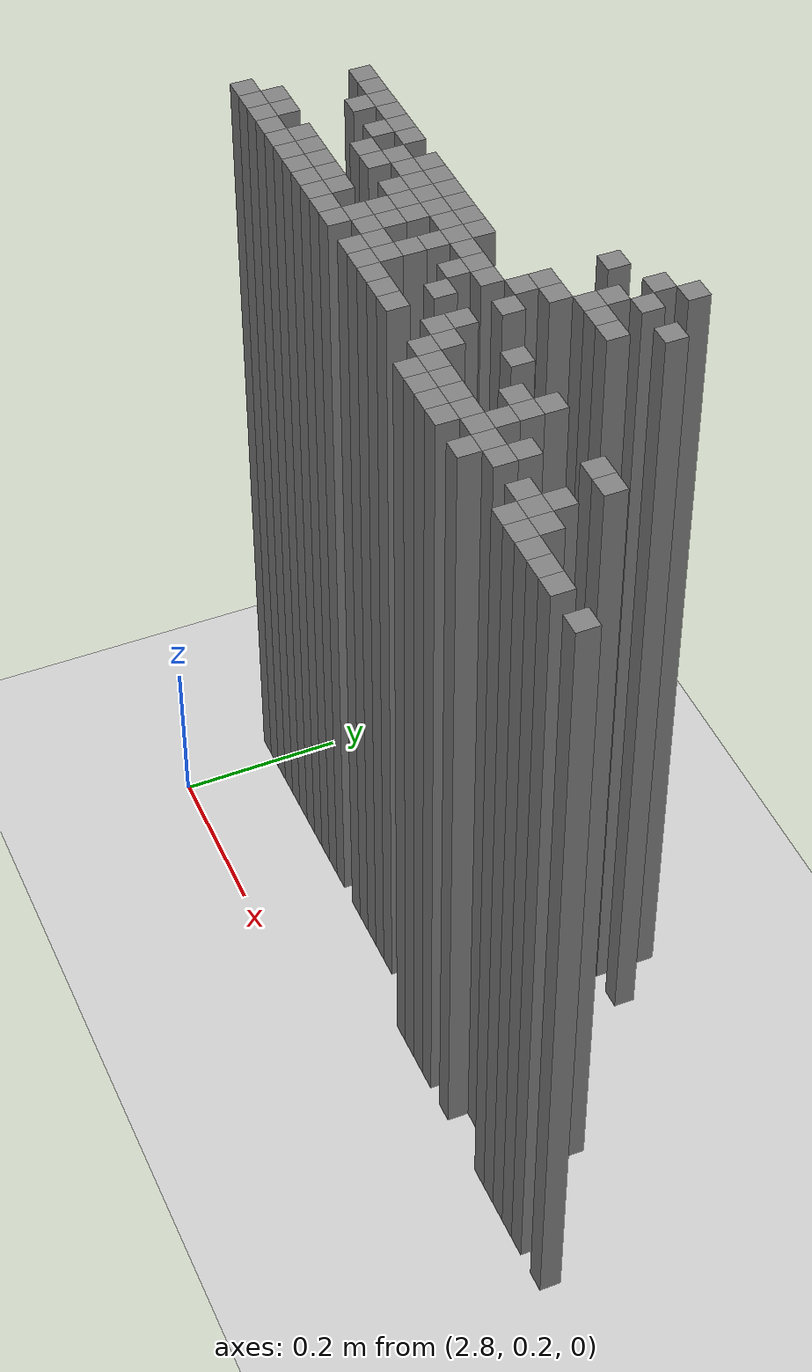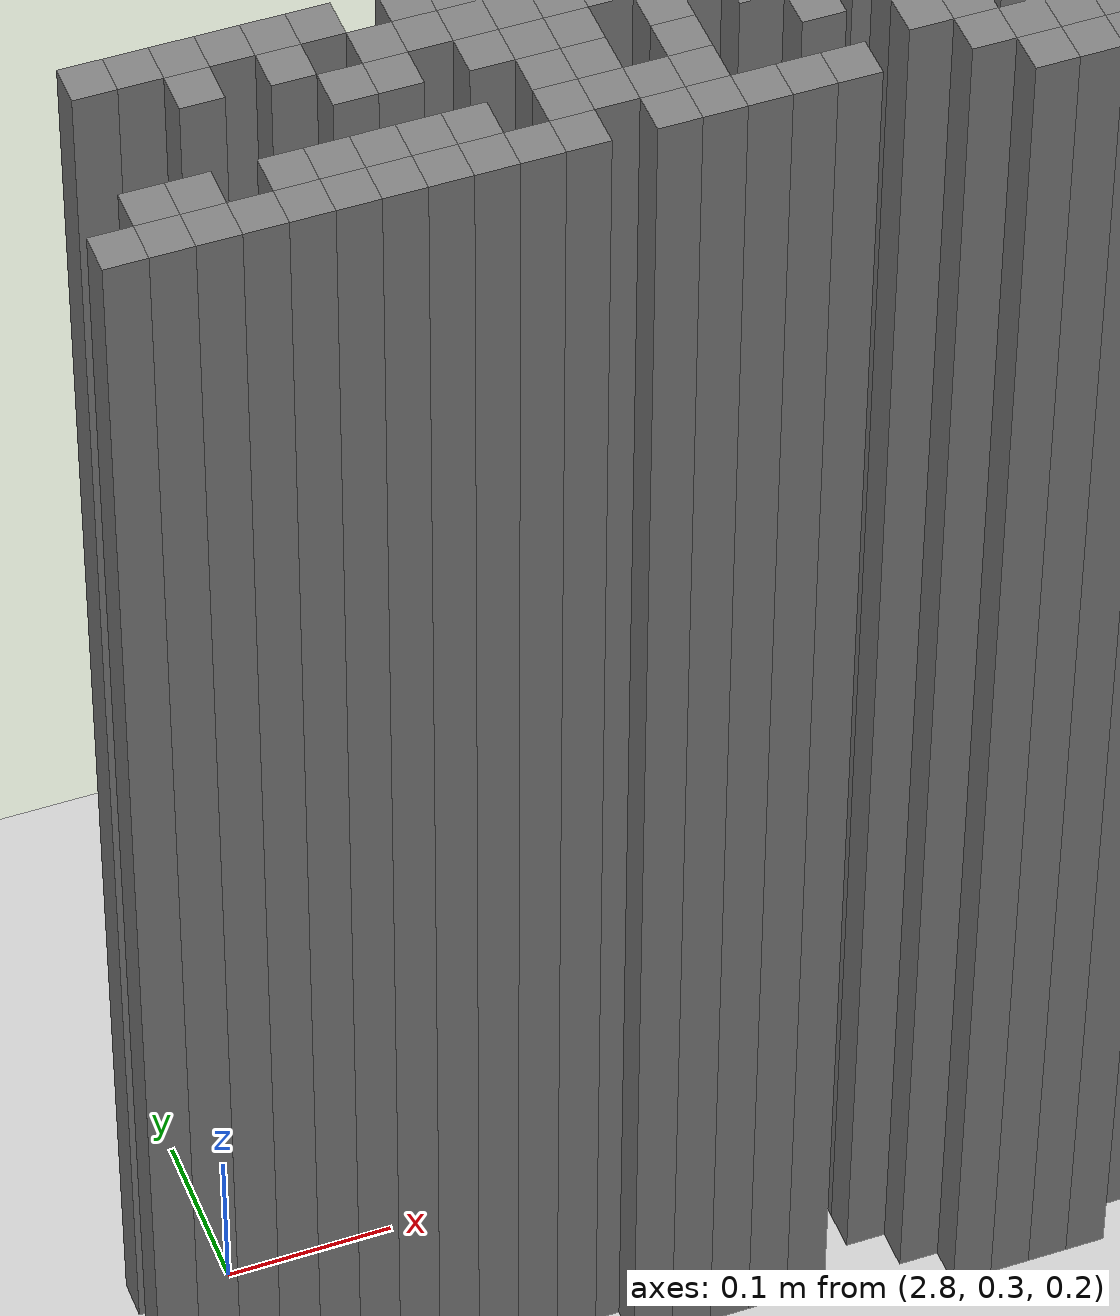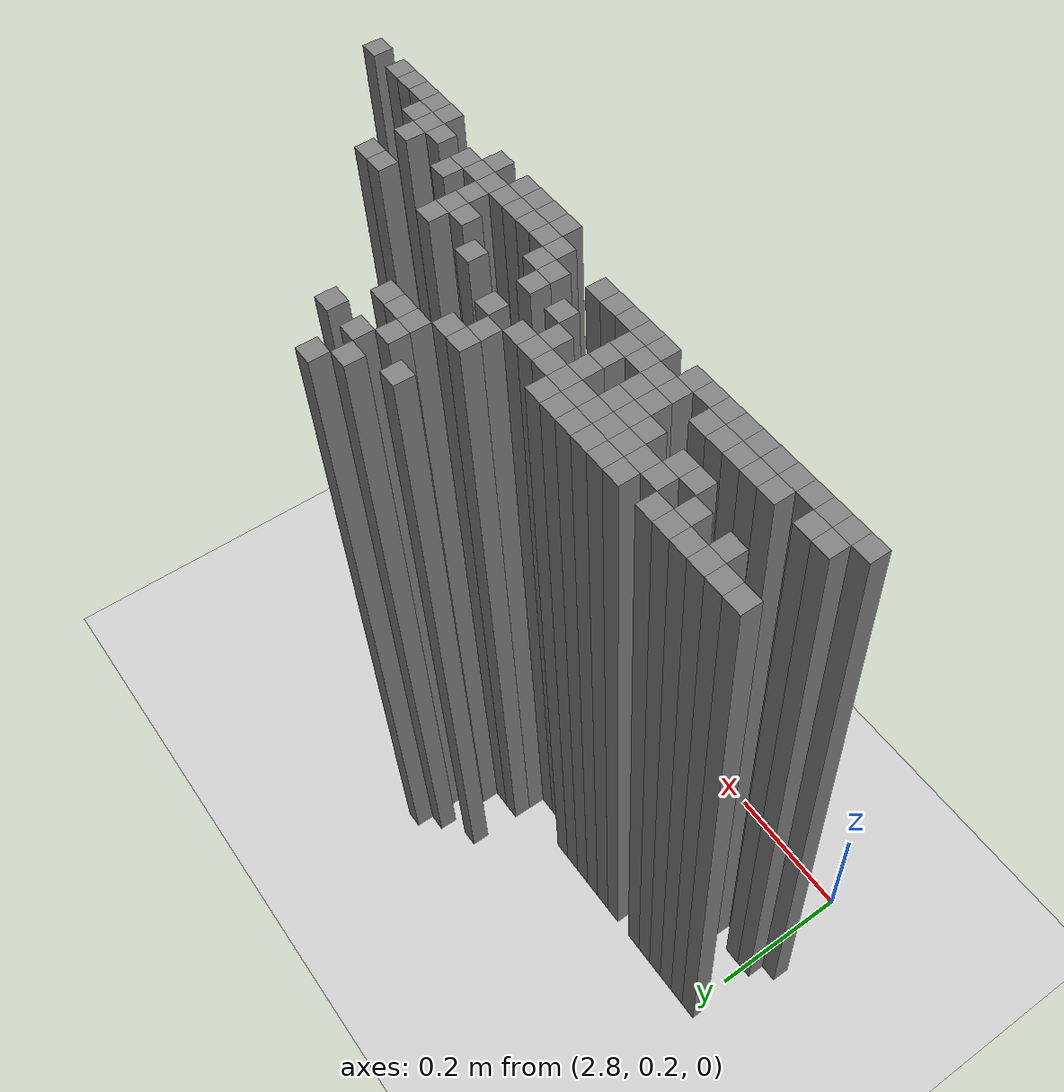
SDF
<sdf version="1.6">
 <world name="map_world">
  <include><uri>model://ground_plane</uri></include>
  <include><uri>model://sun</uri></include>
  <model name="obs_224_25">
   <static>true</static>
   <link name="link">
    <collision name="collision"><geometry><box><size>0.025 0.025 1.0</size></box></geometry></collision>
    <visual name="visual">
     <geometry><box><size>0.025 0.025 1.0</size></box></geometry>
     <material><ambient>0.5 0.5 0.5 1</ambient></material>
    </visual>
   </link>
   <pose>3.2737650000000005 0.6059290000000002 0.5 0 0 0</pose>
  </model>
  <model name="obs_223_26">
   <static>true</static>
   <link name="link">
    <collision name="collision"><geometry><box><size>0.025 0.025 1.0</size></box></geometry></collision>
    <visual name="visual">
     <geometry><box><size>0.025 0.025 1.0</size></box></geometry>
     <material><ambient>0.5 0.5 0.5 1</ambient></material>
    </visual>
   </link>
   <pose>3.248765 0.5809290000000003 0.5 0 0 0</pose>
  </model>
  <model name="obs_221_27">
   <static>true</static>
   <link name="link">
    <collision name="collision"><geometry><box><size>0.025 0.025 1.0</size></box></geometry></collision>
    <visual name="visual">
     <geometry><box><size>0.025 0.025 1.0</size></box></geometry>
     <material><ambient>0.5 0.5 0.5 1</ambient></material>
    </visual>
   </link>
   <pose>3.1987650000000003 0.5559290000000003 0.5 0 0 0</pose>
  </model>
  <model name="obs_224_27">
   <static>true</static>
   <link name="link">
    <collision name="collision"><geometry><box><size>0.025 0.025 1.0</size></box></geometry></collision>
    <visual name="visual">
     <geometry><box><size>0.025 0.025 1.0</size></box></geometry>
     <material><ambient>0.5 0.5 0.5 1</ambient></material>
    </visual>
   </link>
   <pose>3.2737650000000005 0.5559290000000003 0.5 0 0 0</pose>
  </model>
  <model name="obs_226_27">
   <static>true</static>
   <link name="link">
    <collision name="collision"><geometry><box><size>0.025 0.025 1.0</size></box></geometry></collision>
    <visual name="visual">
     <geometry><box><size>0.025 0.025 1.0</size></box></geometry>
     <material><ambient>0.5 0.5 0.5 1</ambient></material>
    </visual>
   </link>
   <pose>3.3237650000000003 0.5559290000000003 0.5 0 0 0</pose>
  </model>
  <model name="obs_223_28">
   <static>true</static>
   <link name="link">
    <collision name="collision"><geometry><box><size>0.025 0.025 1.0</size></box></geometry></collision>
    <visual name="visual">
     <geometry><box><size>0.025 0.025 1.0</size></box></geometry>
     <material><ambient>0.5 0.5 0.5 1</ambient></material>
    </visual>
   </link>
   <pose>3.248765 0.5309290000000004 0.5 0 0 0</pose>
  </model>
  <model name="obs_223_29">
   <static>true</static>
   <link name="link">
    <collision name="collision"><geometry><box><size>0.025 0.025 1.0</size></box></geometry></collision>
    <visual name="visual">
     <geometry><box><size>0.025 0.025 1.0</size></box></geometry>
     <material><ambient>0.5 0.5 0.5 1</ambient></material>
    </visual>
   </link>
   <pose>3.248765 0.5059290000000001 0.5 0 0 0</pose>
  </model>
  <model name="obs_224_29">
   <static>true</static>
   <link name="link">
    <collision name="collision"><geometry><box><size>0.025 0.025 1.0</size></box></geometry></collision>
    <visual name="visual">
     <geometry><box><size>0.025 0.025 1.0</size></box></geometry>
     <material><ambient>0.5 0.5 0.5 1</ambient></material>
    </visual>
   </link>
   <pose>3.2737650000000005 0.5059290000000001 0.5 0 0 0</pose>
  </model>
  <model name="obs_225_29">
   <static>true</static>
   <link name="link">
    <collision name="collision"><geometry><box><size>0.025 0.025 1.0</size></box></geometry></collision>
    <visual name="visual">
     <geometry><box><size>0.025 0.025 1.0</size></box></geometry>
     <material><ambient>0.5 0.5 0.5 1</ambient></material>
    </visual>
   </link>
   <pose>3.298765 0.5059290000000001 0.5 0 0 0</pose>
  </model>
  <model name="obs_221_30">
   <static>true</static>
   <link name="link">
    <collision name="collision"><geometry><box><size>0.025 0.025 1.0</size></box></geometry></collision>
    <visual name="visual">
     <geometry><box><size>0.025 0.025 1.0</size></box></geometry>
     <material><ambient>0.5 0.5 0.5 1</ambient></material>
    </visual>
   </link>
   <pose>3.1987650000000003 0.48092900000000016 0.5 0 0 0</pose>
  </model>
  <model name="obs_222_30">
   <static>true</static>
   <link name="link">
    <collision name="collision"><geometry><box><size>0.025 0.025 1.0</size></box></geometry></collision>
    <visual name="visual">
     <geometry><box><size>0.025 0.025 1.0</size></box></geometry>
     <material><ambient>0.5 0.5 0.5 1</ambient></material>
    </visual>
   </link>
   <pose>3.2237650000000007 0.48092900000000016 0.5 0 0 0</pose>
  </model>
  <model name="obs_205_31">
   <static>true</static>
   <link name="link">
    <collision name="collision"><geometry><box><size>0.025 0.025 1.0</size></box></geometry></collision>
    <visual name="visual">
     <geometry><box><size>0.025 0.025 1.0</size></box></geometry>
     <material><ambient>0.5 0.5 0.5 1</ambient></material>
    </visual>
   </link>
   <pose>2.798765 0.45592900000000025 0.5 0 0 0</pose>
  </model>
  <model name="obs_206_31">
   <static>true</static>
   <link name="link">
    <collision name="collision"><geometry><box><size>0.025 0.025 1.0</size></box></geometry></collision>
    <visual name="visual">
     <geometry><box><size>0.025 0.025 1.0</size></box></geometry>
     <material><ambient>0.5 0.5 0.5 1</ambient></material>
    </visual>
   </link>
   <pose>2.8237650000000003 0.45592900000000025 0.5 0 0 0</pose>
  </model>
  <model name="obs_207_31">
   <static>true</static>
   <link name="link">
    <collision name="collision"><geometry><box><size>0.025 0.025 1.0</size></box></geometry></collision>
    <visual name="visual">
     <geometry><box><size>0.025 0.025 1.0</size></box></geometry>
     <material><ambient>0.5 0.5 0.5 1</ambient></material>
    </visual>
   </link>
   <pose>2.8487650000000007 0.45592900000000025 0.5 0 0 0</pose>
  </model>
  <model name="obs_208_31">
   <static>true</static>
   <link name="link">
    <collision name="collision"><geometry><box><size>0.025 0.025 1.0</size></box></geometry></collision>
    <visual name="visual">
     <geometry><box><size>0.025 0.025 1.0</size></box></geometry>
     <material><ambient>0.5 0.5 0.5 1</ambient></material>
    </visual>
   </link>
   <pose>2.873765 0.45592900000000025 0.5 0 0 0</pose>
  </model>
  <model name="obs_209_31">
   <static>true</static>
   <link name="link">
    <collision name="collision"><geometry><box><size>0.025 0.025 1.0</size></box></geometry></collision>
    <visual name="visual">
     <geometry><box><size>0.025 0.025 1.0</size></box></geometry>
     <material><ambient>0.5 0.5 0.5 1</ambient></material>
    </visual>
   </link>
   <pose>2.8987650000000005 0.45592900000000025 0.5 0 0 0</pose>
  </model>
  <model name="obs_210_31">
   <static>true</static>
   <link name="link">
    <collision name="collision"><geometry><box><size>0.025 0.025 1.0</size></box></geometry></collision>
    <visual name="visual">
     <geometry><box><size>0.025 0.025 1.0</size></box></geometry>
     <material><ambient>0.5 0.5 0.5 1</ambient></material>
    </visual>
   </link>
   <pose>2.923765 0.45592900000000025 0.5 0 0 0</pose>
  </model>
  <model name="obs_212_31">
   <static>true</static>
   <link name="link">
    <collision name="collision"><geometry><box><size>0.025 0.025 1.0</size></box></geometry></collision>
    <visual name="visual">
     <geometry><box><size>0.025 0.025 1.0</size></box></geometry>
     <material><ambient>0.5 0.5 0.5 1</ambient></material>
    </visual>
   </link>
   <pose>2.9737650000000007 0.45592900000000025 0.5 0 0 0</pose>
  </model>
  <model name="obs_213_31">
   <static>true</static>
   <link name="link">
    <collision name="collision"><geometry><box><size>0.025 0.025 1.0</size></box></geometry></collision>
    <visual name="visual">
     <geometry><box><size>0.025 0.025 1.0</size></box></geometry>
     <material><ambient>0.5 0.5 0.5 1</ambient></material>
    </visual>
   </link>
   <pose>2.998765 0.45592900000000025 0.5 0 0 0</pose>
  </model>
  <model name="obs_214_31">
   <static>true</static>
   <link name="link">
    <collision name="collision"><geometry><box><size>0.025 0.025 1.0</size></box></geometry></collision>
    <visual name="visual">
     <geometry><box><size>0.025 0.025 1.0</size></box></geometry>
     <material><ambient>0.5 0.5 0.5 1</ambient></material>
    </visual>
   </link>
   <pose>3.0237650000000005 0.45592900000000025 0.5 0 0 0</pose>
  </model>
  <model name="obs_215_31">
   <static>true</static>
   <link name="link">
    <collision name="collision"><geometry><box><size>0.025 0.025 1.0</size></box></geometry></collision>
    <visual name="visual">
     <geometry><box><size>0.025 0.025 1.0</size></box></geometry>
     <material><ambient>0.5 0.5 0.5 1</ambient></material>
    </visual>
   </link>
   <pose>3.048765 0.45592900000000025 0.5 0 0 0</pose>
  </model>
  <model name="obs_216_31">
   <static>true</static>
   <link name="link">
    <collision name="collision"><geometry><box><size>0.025 0.025 1.0</size></box></geometry></collision>
    <visual name="visual">
     <geometry><box><size>0.025 0.025 1.0</size></box></geometry>
     <material><ambient>0.5 0.5 0.5 1</ambient></material>
    </visual>
   </link>
   <pose>3.0737650000000003 0.45592900000000025 0.5 0 0 0</pose>
  </model>
  <model name="obs_217_31">
   <static>true</static>
   <link name="link">
    <collision name="collision"><geometry><box><size>0.025 0.025 1.0</size></box></geometry></collision>
    <visual name="visual">
     <geometry><box><size>0.025 0.025 1.0</size></box></geometry>
     <material><ambient>0.5 0.5 0.5 1</ambient></material>
    </visual>
   </link>
   <pose>3.0987650000000007 0.45592900000000025 0.5 0 0 0</pose>
  </model>
  <model name="obs_221_31">
   <static>true</static>
   <link name="link">
    <collision name="collision"><geometry><box><size>0.025 0.025 1.0</size></box></geometry></collision>
    <visual name="visual">
     <geometry><box><size>0.025 0.025 1.0</size></box></geometry>
     <material><ambient>0.5 0.5 0.5 1</ambient></material>
    </visual>
   </link>
   <pose>3.1987650000000003 0.45592900000000025 0.5 0 0 0</pose>
  </model>
  <model name="obs_207_32">
   <static>true</static>
   <link name="link">
    <collision name="collision"><geometry><box><size>0.025 0.025 1.0</size></box></geometry></collision>
    <visual name="visual">
     <geometry><box><size>0.025 0.025 1.0</size></box></geometry>
     <material><ambient>0.5 0.5 0.5 1</ambient></material>
    </visual>
   </link>
   <pose>2.8487650000000007 0.43092900000000034 0.5 0 0 0</pose>
  </model>
  <model name="obs_209_32">
   <static>true</static>
   <link name="link">
    <collision name="collision"><geometry><box><size>0.025 0.025 1.0</size></box></geometry></collision>
    <visual name="visual">
     <geometry><box><size>0.025 0.025 1.0</size></box></geometry>
     <material><ambient>0.5 0.5 0.5 1</ambient></material>
    </visual>
   </link>
   <pose>2.8987650000000005 0.43092900000000034 0.5 0 0 0</pose>
  </model>
  <model name="obs_211_32">
   <static>true</static>
   <link name="link">
    <collision name="collision"><geometry><box><size>0.025 0.025 1.0</size></box></geometry></collision>
    <visual name="visual">
     <geometry><box><size>0.025 0.025 1.0</size></box></geometry>
     <material><ambient>0.5 0.5 0.5 1</ambient></material>
    </visual>
   </link>
   <pose>2.9487650000000003 0.43092900000000034 0.5 0 0 0</pose>
  </model>
  <model name="obs_212_32">
   <static>true</static>
   <link name="link">
    <collision name="collision"><geometry><box><size>0.025 0.025 1.0</size></box></geometry></collision>
    <visual name="visual">
     <geometry><box><size>0.025 0.025 1.0</size></box></geometry>
     <material><ambient>0.5 0.5 0.5 1</ambient></material>
    </visual>
   </link>
   <pose>2.9737650000000007 0.43092900000000034 0.5 0 0 0</pose>
  </model>
  <model name="obs_213_32">
   <static>true</static>
   <link name="link">
    <collision name="collision"><geometry><box><size>0.025 0.025 1.0</size></box></geometry></collision>
    <visual name="visual">
     <geometry><box><size>0.025 0.025 1.0</size></box></geometry>
     <material><ambient>0.5 0.5 0.5 1</ambient></material>
    </visual>
   </link>
   <pose>2.998765 0.43092900000000034 0.5 0 0 0</pose>
  </model>
  <model name="obs_214_32">
   <static>true</static>
   <link name="link">
    <collision name="collision"><geometry><box><size>0.025 0.025 1.0</size></box></geometry></collision>
    <visual name="visual">
     <geometry><box><size>0.025 0.025 1.0</size></box></geometry>
     <material><ambient>0.5 0.5 0.5 1</ambient></material>
    </visual>
   </link>
   <pose>3.0237650000000005 0.43092900000000034 0.5 0 0 0</pose>
  </model>
  <model name="obs_215_32">
   <static>true</static>
   <link name="link">
    <collision name="collision"><geometry><box><size>0.025 0.025 1.0</size></box></geometry></collision>
    <visual name="visual">
     <geometry><box><size>0.025 0.025 1.0</size></box></geometry>
     <material><ambient>0.5 0.5 0.5 1</ambient></material>
    </visual>
   </link>
   <pose>3.048765 0.43092900000000034 0.5 0 0 0</pose>
  </model>
  <model name="obs_216_32">
   <static>true</static>
   <link name="link">
    <collision name="collision"><geometry><box><size>0.025 0.025 1.0</size></box></geometry></collision>
    <visual name="visual">
     <geometry><box><size>0.025 0.025 1.0</size></box></geometry>
     <material><ambient>0.5 0.5 0.5 1</ambient></material>
    </visual>
   </link>
   <pose>3.0737650000000003 0.43092900000000034 0.5 0 0 0</pose>
  </model>
  <model name="obs_217_32">
   <static>true</static>
   <link name="link">
    <collision name="collision"><geometry><box><size>0.025 0.025 1.0</size></box></geometry></collision>
    <visual name="visual">
     <geometry><box><size>0.025 0.025 1.0</size></box></geometry>
     <material><ambient>0.5 0.5 0.5 1</ambient></material>
    </visual>
   </link>
   <pose>3.0987650000000007 0.43092900000000034 0.5 0 0 0</pose>
  </model>
  <model name="obs_218_32">
   <static>true</static>
   <link name="link">
    <collision name="collision"><geometry><box><size>0.025 0.025 1.0</size></box></geometry></collision>
    <visual name="visual">
     <geometry><box><size>0.025 0.025 1.0</size></box></geometry>
     <material><ambient>0.5 0.5 0.5 1</ambient></material>
    </visual>
   </link>
   <pose>3.123765 0.43092900000000034 0.5 0 0 0</pose>
  </model>
  <model name="obs_219_32">
   <static>true</static>
   <link name="link">
    <collision name="collision"><geometry><box><size>0.025 0.025 1.0</size></box></geometry></collision>
    <visual name="visual">
     <geometry><box><size>0.025 0.025 1.0</size></box></geometry>
     <material><ambient>0.5 0.5 0.5 1</ambient></material>
    </visual>
   </link>
   <pose>3.1487650000000005 0.43092900000000034 0.5 0 0 0</pose>
  </model>
  <model name="obs_220_32">
   <static>true</static>
   <link name="link">
    <collision name="collision"><geometry><box><size>0.025 0.025 1.0</size></box></geometry></collision>
    <visual name="visual">
     <geometry><box><size>0.025 0.025 1.0</size></box></geometry>
     <material><ambient>0.5 0.5 0.5 1</ambient></material>
    </visual>
   </link>
   <pose>3.173765 0.43092900000000034 0.5 0 0 0</pose>
  </model>
  <model name="obs_222_32">
   <static>true</static>
   <link name="link">
    <collision name="collision"><geometry><box><size>0.025 0.025 1.0</size></box></geometry></collision>
    <visual name="visual">
     <geometry><box><size>0.025 0.025 1.0</size></box></geometry>
     <material><ambient>0.5 0.5 0.5 1</ambient></material>
    </visual>
   </link>
   <pose>3.2237650000000007 0.43092900000000034 0.5 0 0 0</pose>
  </model>
  <model name="obs_210_33">
   <static>true</static>
   <link name="link">
    <collision name="collision"><geometry><box><size>0.025 0.025 1.0</size></box></geometry></collision>
    <visual name="visual">
     <geometry><box><size>0.025 0.025 1.0</size></box></geometry>
     <material><ambient>0.5 0.5 0.5 1</ambient></material>
    </visual>
   </link>
   <pose>2.923765 0.40592900000000043 0.5 0 0 0</pose>
  </model>
  <model name="obs_211_33">
   <static>true</static>
   <link name="link">
    <collision name="collision"><geometry><box><size>0.025 0.025 1.0</size></box></geometry></collision>
    <visual name="visual">
     <geometry><box><size>0.025 0.025 1.0</size></box></geometry>
     <material><ambient>0.5 0.5 0.5 1</ambient></material>
    </visual>
   </link>
   <pose>2.9487650000000003 0.40592900000000043 0.5 0 0 0</pose>
  </model>
  <model name="obs_213_33">
   <static>true</static>
   <link name="link">
    <collision name="collision"><geometry><box><size>0.025 0.025 1.0</size></box></geometry></collision>
    <visual name="visual">
     <geometry><box><size>0.025 0.025 1.0</size></box></geometry>
     <material><ambient>0.5 0.5 0.5 1</ambient></material>
    </visual>
   </link>
   <pose>2.998765 0.40592900000000043 0.5 0 0 0</pose>
  </model>
  <model name="obs_214_33">
   <static>true</static>
   <link name="link">
    <collision name="collision"><geometry><box><size>0.025 0.025 1.0</size></box></geometry></collision>
    <visual name="visual">
     <geometry><box><size>0.025 0.025 1.0</size></box></geometry>
     <material><ambient>0.5 0.5 0.5 1</ambient></material>
    </visual>
   </link>
   <pose>3.0237650000000005 0.40592900000000043 0.5 0 0 0</pose>
  </model>
  <model name="obs_215_33">
   <static>true</static>
   <link name="link">
    <collision name="collision"><geometry><box><size>0.025 0.025 1.0</size></box></geometry></collision>
    <visual name="visual">
     <geometry><box><size>0.025 0.025 1.0</size></box></geometry>
     <material><ambient>0.5 0.5 0.5 1</ambient></material>
    </visual>
   </link>
   <pose>3.048765 0.40592900000000043 0.5 0 0 0</pose>
  </model>
  <model name="obs_217_33">
   <static>true</static>
   <link name="link">
    <collision name="collision"><geometry><box><size>0.025 0.025 1.0</size></box></geometry></collision>
    <visual name="visual">
     <geometry><box><size>0.025 0.025 1.0</size></box></geometry>
     <material><ambient>0.5 0.5 0.5 1</ambient></material>
    </visual>
   </link>
   <pose>3.0987650000000007 0.40592900000000043 0.5 0 0 0</pose>
  </model>
  <model name="obs_219_33">
   <static>true</static>
   <link name="link">
    <collision name="collision"><geometry><box><size>0.025 0.025 1.0</size></box></geometry></collision>
    <visual name="visual">
     <geometry><box><size>0.025 0.025 1.0</size></box></geometry>
     <material><ambient>0.5 0.5 0.5 1</ambient></material>
    </visual>
   </link>
   <pose>3.1487650000000005 0.40592900000000043 0.5 0 0 0</pose>
  </model>
  <model name="obs_225_33">
   <static>true</static>
   <link name="link">
    <collision name="collision"><geometry><box><size>0.025 0.025 1.0</size></box></geometry></collision>
    <visual name="visual">
     <geometry><box><size>0.025 0.025 1.0</size></box></geometry>
     <material><ambient>0.5 0.5 0.5 1</ambient></material>
    </visual>
   </link>
   <pose>3.298765 0.40592900000000043 0.5 0 0 0</pose>
  </model>
  <model name="obs_228_33">
   <static>true</static>
   <link name="link">
    <collision name="collision"><geometry><box><size>0.025 0.025 1.0</size></box></geometry></collision>
    <visual name="visual">
     <geometry><box><size>0.025 0.025 1.0</size></box></geometry>
     <material><ambient>0.5 0.5 0.5 1</ambient></material>
    </visual>
   </link>
   <pose>3.373765 0.40592900000000043 0.5 0 0 0</pose>
  </model>
  <model name="obs_232_33">
   <static>true</static>
   <link name="link">
    <collision name="collision"><geometry><box><size>0.025 0.025 1.0</size></box></geometry></collision>
    <visual name="visual">
     <geometry><box><size>0.025 0.025 1.0</size></box></geometry>
     <material><ambient>0.5 0.5 0.5 1</ambient></material>
    </visual>
   </link>
   <pose>3.4737650000000007 0.40592900000000043 0.5 0 0 0</pose>
  </model>
  <model name="obs_233_33">
   <static>true</static>
   <link name="link">
    <collision name="collision"><geometry><box><size>0.025 0.025 1.0</size></box></geometry></collision>
    <visual name="visual">
     <geometry><box><size>0.025 0.025 1.0</size></box></geometry>
     <material><ambient>0.5 0.5 0.5 1</ambient></material>
    </visual>
   </link>
   <pose>3.498765 0.40592900000000043 0.5 0 0 0</pose>
  </model>
  <model name="obs_214_34">
   <static>true</static>
   <link name="link">
    <collision name="collision"><geometry><box><size>0.025 0.025 1.0</size></box></geometry></collision>
    <visual name="visual">
     <geometry><box><size>0.025 0.025 1.0</size></box></geometry>
     <material><ambient>0.5 0.5 0.5 1</ambient></material>
    </visual>
   </link>
   <pose>3.0237650000000005 0.3809290000000001 0.5 0 0 0</pose>
  </model>
  <model name="obs_215_34">
   <static>true</static>
   <link name="link">
    <collision name="collision"><geometry><box><size>0.025 0.025 1.0</size></box></geometry></collision>
    <visual name="visual">
     <geometry><box><size>0.025 0.025 1.0</size></box></geometry>
     <material><ambient>0.5 0.5 0.5 1</ambient></material>
    </visual>
   </link>
   <pose>3.048765 0.3809290000000001 0.5 0 0 0</pose>
  </model>
  <model name="obs_217_34">
   <static>true</static>
   <link name="link">
    <collision name="collision"><geometry><box><size>0.025 0.025 1.0</size></box></geometry></collision>
    <visual name="visual">
     <geometry><box><size>0.025 0.025 1.0</size></box></geometry>
     <material><ambient>0.5 0.5 0.5 1</ambient></material>
    </visual>
   </link>
   <pose>3.0987650000000007 0.3809290000000001 0.5 0 0 0</pose>
  </model>
  <model name="obs_220_34">
   <static>true</static>
   <link name="link">
    <collision name="collision"><geometry><box><size>0.025 0.025 1.0</size></box></geometry></collision>
    <visual name="visual">
     <geometry><box><size>0.025 0.025 1.0</size></box></geometry>
     <material><ambient>0.5 0.5 0.5 1</ambient></material>
    </visual>
   </link>
   <pose>3.173765 0.3809290000000001 0.5 0 0 0</pose>
  </model>
  <model name="obs_222_34">
   <static>true</static>
   <link name="link">
    <collision name="collision"><geometry><box><size>0.025 0.025 1.0</size></box></geometry></collision>
    <visual name="visual">
     <geometry><box><size>0.025 0.025 1.0</size></box></geometry>
     <material><ambient>0.5 0.5 0.5 1</ambient></material>
    </visual>
   </link>
   <pose>3.2237650000000007 0.3809290000000001 0.5 0 0 0</pose>
  </model>
  <model name="obs_227_34">
   <static>true</static>
   <link name="link">
    <collision name="collision"><geometry><box><size>0.025 0.025 1.0</size></box></geometry></collision>
    <visual name="visual">
     <geometry><box><size>0.025 0.025 1.0</size></box></geometry>
     <material><ambient>0.5 0.5 0.5 1</ambient></material>
    </visual>
   </link>
   <pose>3.3487650000000007 0.3809290000000001 0.5 0 0 0</pose>
  </model>
  <model name="obs_228_34">
   <static>true</static>
   <link name="link">
    <collision name="collision"><geometry><box><size>0.025 0.025 1.0</size></box></geometry></collision>
    <visual name="visual">
     <geometry><box><size>0.025 0.025 1.0</size></box></geometry>
     <material><ambient>0.5 0.5 0.5 1</ambient></material>
    </visual>
   </link>
   <pose>3.373765 0.3809290000000001 0.5 0 0 0</pose>
  </model>
  <model name="obs_205_35">
   <static>true</static>
   <link name="link">
    <collision name="collision"><geometry><box><size>0.025 0.025 1.0</size></box></geometry></collision>
    <visual name="visual">
     <geometry><box><size>0.025 0.025 1.0</size></box></geometry>
     <material><ambient>0.5 0.5 0.5 1</ambient></material>
    </visual>
   </link>
   <pose>2.798765 0.35592900000000016 0.5 0 0 0</pose>
  </model>
  <model name="obs_206_35">
   <static>true</static>
   <link name="link">
    <collision name="collision"><geometry><box><size>0.025 0.025 1.0</size></box></geometry></collision>
    <visual name="visual">
     <geometry><box><size>0.025 0.025 1.0</size></box></geometry>
     <material><ambient>0.5 0.5 0.5 1</ambient></material>
    </visual>
   </link>
   <pose>2.8237650000000003 0.35592900000000016 0.5 0 0 0</pose>
  </model>
  <model name="obs_208_35">
   <static>true</static>
   <link name="link">
    <collision name="collision"><geometry><box><size>0.025 0.025 1.0</size></box></geometry></collision>
    <visual name="visual">
     <geometry><box><size>0.025 0.025 1.0</size></box></geometry>
     <material><ambient>0.5 0.5 0.5 1</ambient></material>
    </visual>
   </link>
   <pose>2.873765 0.35592900000000016 0.5 0 0 0</pose>
  </model>
  <model name="obs_209_35">
   <static>true</static>
   <link name="link">
    <collision name="collision"><geometry><box><size>0.025 0.025 1.0</size></box></geometry></collision>
    <visual name="visual">
     <geometry><box><size>0.025 0.025 1.0</size></box></geometry>
     <material><ambient>0.5 0.5 0.5 1</ambient></material>
    </visual>
   </link>
   <pose>2.8987650000000005 0.35592900000000016 0.5 0 0 0</pose>
  </model>
  <model name="obs_210_35">
   <static>true</static>
   <link name="link">
    <collision name="collision"><geometry><box><size>0.025 0.025 1.0</size></box></geometry></collision>
    <visual name="visual">
     <geometry><box><size>0.025 0.025 1.0</size></box></geometry>
     <material><ambient>0.5 0.5 0.5 1</ambient></material>
    </visual>
   </link>
   <pose>2.923765 0.35592900000000016 0.5 0 0 0</pose>
  </model>
  <model name="obs_211_35">
   <static>true</static>
   <link name="link">
    <collision name="collision"><geometry><box><size>0.025 0.025 1.0</size></box></geometry></collision>
    <visual name="visual">
     <geometry><box><size>0.025 0.025 1.0</size></box></geometry>
     <material><ambient>0.5 0.5 0.5 1</ambient></material>
    </visual>
   </link>
   <pose>2.9487650000000003 0.35592900000000016 0.5 0 0 0</pose>
  </model>
  <model name="obs_212_35">
   <static>true</static>
   <link name="link">
    <collision name="collision"><geometry><box><size>0.025 0.025 1.0</size></box></geometry></collision>
    <visual name="visual">
     <geometry><box><size>0.025 0.025 1.0</size></box></geometry>
     <material><ambient>0.5 0.5 0.5 1</ambient></material>
    </visual>
   </link>
   <pose>2.9737650000000007 0.35592900000000016 0.5 0 0 0</pose>
  </model>
  <model name="obs_214_35">
   <static>true</static>
   <link name="link">
    <collision name="collision"><geometry><box><size>0.025 0.025 1.0</size></box></geometry></collision>
    <visual name="visual">
     <geometry><box><size>0.025 0.025 1.0</size></box></geometry>
     <material><ambient>0.5 0.5 0.5 1</ambient></material>
    </visual>
   </link>
   <pose>3.0237650000000005 0.35592900000000016 0.5 0 0 0</pose>
  </model>
  <model name="obs_215_35">
   <static>true</static>
   <link name="link">
    <collision name="collision"><geometry><box><size>0.025 0.025 1.0</size></box></geometry></collision>
    <visual name="visual">
     <geometry><box><size>0.025 0.025 1.0</size></box></geometry>
     <material><ambient>0.5 0.5 0.5 1</ambient></material>
    </visual>
   </link>
   <pose>3.048765 0.35592900000000016 0.5 0 0 0</pose>
  </model>
  <model name="obs_216_35">
   <static>true</static>
   <link name="link">
    <collision name="collision"><geometry><box><size>0.025 0.025 1.0</size></box></geometry></collision>
    <visual name="visual">
     <geometry><box><size>0.025 0.025 1.0</size></box></geometry>
     <material><ambient>0.5 0.5 0.5 1</ambient></material>
    </visual>
   </link>
   <pose>3.0737650000000003 0.35592900000000016 0.5 0 0 0</pose>
  </model>
  <model name="obs_217_35">
   <static>true</static>
   <link name="link">
    <collision name="collision"><geometry><box><size>0.025 0.025 1.0</size></box></geometry></collision>
    <visual name="visual">
     <geometry><box><size>0.025 0.025 1.0</size></box></geometry>
     <material><ambient>0.5 0.5 0.5 1</ambient></material>
    </visual>
   </link>
   <pose>3.0987650000000007 0.35592900000000016 0.5 0 0 0</pose>
  </model>
  <model name="obs_222_35">
   <static>true</static>
   <link name="link">
    <collision name="collision"><geometry><box><size>0.025 0.025 1.0</size></box></geometry></collision>
    <visual name="visual">
     <geometry><box><size>0.025 0.025 1.0</size></box></geometry>
     <material><ambient>0.5 0.5 0.5 1</ambient></material>
    </visual>
   </link>
   <pose>3.2237650000000007 0.35592900000000016 0.5 0 0 0</pose>
  </model>
  <model name="obs_223_35">
   <static>true</static>
   <link name="link">
    <collision name="collision"><geometry><box><size>0.025 0.025 1.0</size></box></geometry></collision>
    <visual name="visual">
     <geometry><box><size>0.025 0.025 1.0</size></box></geometry>
     <material><ambient>0.5 0.5 0.5 1</ambient></material>
    </visual>
   </link>
   <pose>3.248765 0.35592900000000016 0.5 0 0 0</pose>
  </model>
  <model name="obs_228_35">
   <static>true</static>
   <link name="link">
    <collision name="collision"><geometry><box><size>0.025 0.025 1.0</size></box></geometry></collision>
    <visual name="visual">
     <geometry><box><size>0.025 0.025 1.0</size></box></geometry>
     <material><ambient>0.5 0.5 0.5 1</ambient></material>
    </visual>
   </link>
   <pose>3.373765 0.35592900000000016 0.5 0 0 0</pose>
  </model>
  <model name="obs_230_35">
   <static>true</static>
   <link name="link">
    <collision name="collision"><geometry><box><size>0.025 0.025 1.0</size></box></geometry></collision>
    <visual name="visual">
     <geometry><box><size>0.025 0.025 1.0</size></box></geometry>
     <material><ambient>0.5 0.5 0.5 1</ambient></material>
    </visual>
   </link>
   <pose>3.423765 0.35592900000000016 0.5 0 0 0</pose>
  </model>
  <model name="obs_233_35">
   <static>true</static>
   <link name="link">
    <collision name="collision"><geometry><box><size>0.025 0.025 1.0</size></box></geometry></collision>
    <visual name="visual">
     <geometry><box><size>0.025 0.025 1.0</size></box></geometry>
     <material><ambient>0.5 0.5 0.5 1</ambient></material>
    </visual>
   </link>
   <pose>3.498765 0.35592900000000016 0.5 0 0 0</pose>
  </model>
  <model name="obs_204_36">
   <static>true</static>
   <link name="link">
    <collision name="collision"><geometry><box><size>0.025 0.025 1.0</size></box></geometry></collision>
    <visual name="visual">
     <geometry><box><size>0.025 0.025 1.0</size></box></geometry>
     <material><ambient>0.5 0.5 0.5 1</ambient></material>
    </visual>
   </link>
   <pose>2.7737650000000005 0.33092900000000025 0.5 0 0 0</pose>
  </model>
  <model name="obs_205_36">
   <static>true</static>
   <link name="link">
    <collision name="collision"><geometry><box><size>0.025 0.025 1.0</size></box></geometry></collision>
    <visual name="visual">
     <geometry><box><size>0.025 0.025 1.0</size></box></geometry>
     <material><ambient>0.5 0.5 0.5 1</ambient></material>
    </visual>
   </link>
   <pose>2.798765 0.33092900000000025 0.5 0 0 0</pose>
  </model>
  <model name="obs_206_36">
   <static>true</static>
   <link name="link">
    <collision name="collision"><geometry><box><size>0.025 0.025 1.0</size></box></geometry></collision>
    <visual name="visual">
     <geometry><box><size>0.025 0.025 1.0</size></box></geometry>
     <material><ambient>0.5 0.5 0.5 1</ambient></material>
    </visual>
   </link>
   <pose>2.8237650000000003 0.33092900000000025 0.5 0 0 0</pose>
  </model>
  <model name="obs_207_36">
   <static>true</static>
   <link name="link">
    <collision name="collision"><geometry><box><size>0.025 0.025 1.0</size></box></geometry></collision>
    <visual name="visual">
     <geometry><box><size>0.025 0.025 1.0</size></box></geometry>
     <material><ambient>0.5 0.5 0.5 1</ambient></material>
    </visual>
   </link>
   <pose>2.8487650000000007 0.33092900000000025 0.5 0 0 0</pose>
  </model>
  <model name="obs_208_36">
   <static>true</static>
   <link name="link">
    <collision name="collision"><geometry><box><size>0.025 0.025 1.0</size></box></geometry></collision>
    <visual name="visual">
     <geometry><box><size>0.025 0.025 1.0</size></box></geometry>
     <material><ambient>0.5 0.5 0.5 1</ambient></material>
    </visual>
   </link>
   <pose>2.873765 0.33092900000000025 0.5 0 0 0</pose>
  </model>
  <model name="obs_209_36">
   <static>true</static>
   <link name="link">
    <collision name="collision"><geometry><box><size>0.025 0.025 1.0</size></box></geometry></collision>
    <visual name="visual">
     <geometry><box><size>0.025 0.025 1.0</size></box></geometry>
     <material><ambient>0.5 0.5 0.5 1</ambient></material>
    </visual>
   </link>
   <pose>2.8987650000000005 0.33092900000000025 0.5 0 0 0</pose>
  </model>
  <model name="obs_210_36">
   <static>true</static>
   <link name="link">
    <collision name="collision"><geometry><box><size>0.025 0.025 1.0</size></box></geometry></collision>
    <visual name="visual">
     <geometry><box><size>0.025 0.025 1.0</size></box></geometry>
     <material><ambient>0.5 0.5 0.5 1</ambient></material>
    </visual>
   </link>
   <pose>2.923765 0.33092900000000025 0.5 0 0 0</pose>
  </model>
  <model name="obs_211_36">
   <static>true</static>
   <link name="link">
    <collision name="collision"><geometry><box><size>0.025 0.025 1.0</size></box></geometry></collision>
    <visual name="visual">
     <geometry><box><size>0.025 0.025 1.0</size></box></geometry>
     <material><ambient>0.5 0.5 0.5 1</ambient></material>
    </visual>
   </link>
   <pose>2.9487650000000003 0.33092900000000025 0.5 0 0 0</pose>
  </model>
  <model name="obs_212_36">
   <static>true</static>
   <link name="link">
    <collision name="collision"><geometry><box><size>0.025 0.025 1.0</size></box></geometry></collision>
    <visual name="visual">
     <geometry><box><size>0.025 0.025 1.0</size></box></geometry>
     <material><ambient>0.5 0.5 0.5 1</ambient></material>
    </visual>
   </link>
   <pose>2.9737650000000007 0.33092900000000025 0.5 0 0 0</pose>
  </model>
  <model name="obs_213_36">
   <static>true</static>
   <link name="link">
    <collision name="collision"><geometry><box><size>0.025 0.025 1.0</size></box></geometry></collision>
    <visual name="visual">
     <geometry><box><size>0.025 0.025 1.0</size></box></geometry>
     <material><ambient>0.5 0.5 0.5 1</ambient></material>
    </visual>
   </link>
   <pose>2.998765 0.33092900000000025 0.5 0 0 0</pose>
  </model>
  <model name="obs_214_36">
   <static>true</static>
   <link name="link">
    <collision name="collision"><geometry><box><size>0.025 0.025 1.0</size></box></geometry></collision>
    <visual name="visual">
     <geometry><box><size>0.025 0.025 1.0</size></box></geometry>
     <material><ambient>0.5 0.5 0.5 1</ambient></material>
    </visual>
   </link>
   <pose>3.0237650000000005 0.33092900000000025 0.5 0 0 0</pose>
  </model>
  <model name="obs_216_36">
   <static>true</static>
   <link name="link">
    <collision name="collision"><geometry><box><size>0.025 0.025 1.0</size></box></geometry></collision>
    <visual name="visual">
     <geometry><box><size>0.025 0.025 1.0</size></box></geometry>
     <material><ambient>0.5 0.5 0.5 1</ambient></material>
    </visual>
   </link>
   <pose>3.0737650000000003 0.33092900000000025 0.5 0 0 0</pose>
  </model>
  <model name="obs_217_36">
   <static>true</static>
   <link name="link">
    <collision name="collision"><geometry><box><size>0.025 0.025 1.0</size></box></geometry></collision>
    <visual name="visual">
     <geometry><box><size>0.025 0.025 1.0</size></box></geometry>
     <material><ambient>0.5 0.5 0.5 1</ambient></material>
    </visual>
   </link>
   <pose>3.0987650000000007 0.33092900000000025 0.5 0 0 0</pose>
  </model>
  <model name="obs_218_36">
   <static>true</static>
   <link name="link">
    <collision name="collision"><geometry><box><size>0.025 0.025 1.0</size></box></geometry></collision>
    <visual name="visual">
     <geometry><box><size>0.025 0.025 1.0</size></box></geometry>
     <material><ambient>0.5 0.5 0.5 1</ambient></material>
    </visual>
   </link>
   <pose>3.123765 0.33092900000000025 0.5 0 0 0</pose>
  </model>
  <model name="obs_219_36">
   <static>true</static>
   <link name="link">
    <collision name="collision"><geometry><box><size>0.025 0.025 1.0</size></box></geometry></collision>
    <visual name="visual">
     <geometry><box><size>0.025 0.025 1.0</size></box></geometry>
     <material><ambient>0.5 0.5 0.5 1</ambient></material>
    </visual>
   </link>
   <pose>3.1487650000000005 0.33092900000000025 0.5 0 0 0</pose>
  </model>
  <model name="obs_220_36">
   <static>true</static>
   <link name="link">
    <collision name="collision"><geometry><box><size>0.025 0.025 1.0</size></box></geometry></collision>
    <visual name="visual">
     <geometry><box><size>0.025 0.025 1.0</size></box></geometry>
     <material><ambient>0.5 0.5 0.5 1</ambient></material>
    </visual>
   </link>
   <pose>3.173765 0.33092900000000025 0.5 0 0 0</pose>
  </model>
  <model name="obs_223_36">
   <static>true</static>
   <link name="link">
    <collision name="collision"><geometry><box><size>0.025 0.025 1.0</size></box></geometry></collision>
    <visual name="visual">
     <geometry><box><size>0.025 0.025 1.0</size></box></geometry>
     <material><ambient>0.5 0.5 0.5 1</ambient></material>
    </visual>
   </link>
   <pose>3.248765 0.33092900000000025 0.5 0 0 0</pose>
  </model>
  <model name="obs_224_36">
   <static>true</static>
   <link name="link">
    <collision name="collision"><geometry><box><size>0.025 0.025 1.0</size></box></geometry></collision>
    <visual name="visual">
     <geometry><box><size>0.025 0.025 1.0</size></box></geometry>
     <material><ambient>0.5 0.5 0.5 1</ambient></material>
    </visual>
   </link>
   <pose>3.2737650000000005 0.33092900000000025 0.5 0 0 0</pose>
  </model>
  <model name="obs_225_36">
   <static>true</static>
   <link name="link">
    <collision name="collision"><geometry><box><size>0.025 0.025 1.0</size></box></geometry></collision>
    <visual name="visual">
     <geometry><box><size>0.025 0.025 1.0</size></box></geometry>
     <material><ambient>0.5 0.5 0.5 1</ambient></material>
    </visual>
   </link>
   <pose>3.298765 0.33092900000000025 0.5 0 0 0</pose>
  </model>
  <model name="obs_226_36">
   <static>true</static>
   <link name="link">
    <collision name="collision"><geometry><box><size>0.025 0.025 1.0</size></box></geometry></collision>
    <visual name="visual">
     <geometry><box><size>0.025 0.025 1.0</size></box></geometry>
     <material><ambient>0.5 0.5 0.5 1</ambient></material>
    </visual>
   </link>
   <pose>3.3237650000000003 0.33092900000000025 0.5 0 0 0</pose>
  </model>
  <model name="obs_227_36">
   <static>true</static>
   <link name="link">
    <collision name="collision"><geometry><box><size>0.025 0.025 1.0</size></box></geometry></collision>
    <visual name="visual">
     <geometry><box><size>0.025 0.025 1.0</size></box></geometry>
     <material><ambient>0.5 0.5 0.5 1</ambient></material>
    </visual>
   </link>
   <pose>3.3487650000000007 0.33092900000000025 0.5 0 0 0</pose>
  </model>
  <model name="obs_228_36">
   <static>true</static>
   <link name="link">
    <collision name="collision"><geometry><box><size>0.025 0.025 1.0</size></box></geometry></collision>
    <visual name="visual">
     <geometry><box><size>0.025 0.025 1.0</size></box></geometry>
     <material><ambient>0.5 0.5 0.5 1</ambient></material>
    </visual>
   </link>
   <pose>3.373765 0.33092900000000025 0.5 0 0 0</pose>
  </model>
  <model name="obs_229_36">
   <static>true</static>
   <link name="link">
    <collision name="collision"><geometry><box><size>0.025 0.025 1.0</size></box></geometry></collision>
    <visual name="visual">
     <geometry><box><size>0.025 0.025 1.0</size></box></geometry>
     <material><ambient>0.5 0.5 0.5 1</ambient></material>
    </visual>
   </link>
   <pose>3.3987650000000005 0.33092900000000025 0.5 0 0 0</pose>
  </model>
  <model name="obs_230_36">
   <static>true</static>
   <link name="link">
    <collision name="collision"><geometry><box><size>0.025 0.025 1.0</size></box></geometry></collision>
    <visual name="visual">
     <geometry><box><size>0.025 0.025 1.0</size></box></geometry>
     <material><ambient>0.5 0.5 0.5 1</ambient></material>
    </visual>
   </link>
   <pose>3.423765 0.33092900000000025 0.5 0 0 0</pose>
  </model>
  <model name="obs_232_36">
   <static>true</static>
   <link name="link">
    <collision name="collision"><geometry><box><size>0.025 0.025 1.0</size></box></geometry></collision>
    <visual name="visual">
     <geometry><box><size>0.025 0.025 1.0</size></box></geometry>
     <material><ambient>0.5 0.5 0.5 1</ambient></material>
    </visual>
   </link>
   <pose>3.4737650000000007 0.33092900000000025 0.5 0 0 0</pose>
  </model>
  <model name="obs_233_36">
   <static>true</static>
   <link name="link">
    <collision name="collision"><geometry><box><size>0.025 0.025 1.0</size></box></geometry></collision>
    <visual name="visual">
     <geometry><box><size>0.025 0.025 1.0</size></box></geometry>
     <material><ambient>0.5 0.5 0.5 1</ambient></material>
    </visual>
   </link>
   <pose>3.498765 0.33092900000000025 0.5 0 0 0</pose>
  </model>
  <model name="obs_234_36">
   <static>true</static>
   <link name="link">
    <collision name="collision"><geometry><box><size>0.025 0.025 1.0</size></box></geometry></collision>
    <visual name="visual">
     <geometry><box><size>0.025 0.025 1.0</size></box></geometry>
     <material><ambient>0.5 0.5 0.5 1</ambient></material>
    </visual>
   </link>
   <pose>3.5237650000000005 0.33092900000000025 0.5 0 0 0</pose>
  </model>
  <model name="obs_224_37">
   <static>true</static>
   <link name="link">
    <collision name="collision"><geometry><box><size>0.025 0.025 1.0</size></box></geometry></collision>
    <visual name="visual">
     <geometry><box><size>0.025 0.025 1.0</size></box></geometry>
     <material><ambient>0.5 0.5 0.5 1</ambient></material>
    </visual>
   </link>
   <pose>3.2737650000000005 0.30592900000000034 0.5 0 0 0</pose>
  </model>
  <model name="obs_225_37">
   <static>true</static>
   <link name="link">
    <collision name="collision"><geometry><box><size>0.025 0.025 1.0</size></box></geometry></collision>
    <visual name="visual">
     <geometry><box><size>0.025 0.025 1.0</size></box></geometry>
     <material><ambient>0.5 0.5 0.5 1</ambient></material>
    </visual>
   </link>
   <pose>3.298765 0.30592900000000034 0.5 0 0 0</pose>
  </model>
  <model name="obs_226_37">
   <static>true</static>
   <link name="link">
    <collision name="collision"><geometry><box><size>0.025 0.025 1.0</size></box></geometry></collision>
    <visual name="visual">
     <geometry><box><size>0.025 0.025 1.0</size></box></geometry>
     <material><ambient>0.5 0.5 0.5 1</ambient></material>
    </visual>
   </link>
   <pose>3.3237650000000003 0.30592900000000034 0.5 0 0 0</pose>
  </model>
  <model name="obs_227_37">
   <static>true</static>
   <link name="link">
    <collision name="collision"><geometry><box><size>0.025 0.025 1.0</size></box></geometry></collision>
    <visual name="visual">
     <geometry><box><size>0.025 0.025 1.0</size></box></geometry>
     <material><ambient>0.5 0.5 0.5 1</ambient></material>
    </visual>
   </link>
   <pose>3.3487650000000007 0.30592900000000034 0.5 0 0 0</pose>
  </model>
  <model name="obs_229_37">
   <static>true</static>
   <link name="link">
    <collision name="collision"><geometry><box><size>0.025 0.025 1.0</size></box></geometry></collision>
    <visual name="visual">
     <geometry><box><size>0.025 0.025 1.0</size></box></geometry>
     <material><ambient>0.5 0.5 0.5 1</ambient></material>
    </visual>
   </link>
   <pose>3.3987650000000005 0.30592900000000034 0.5 0 0 0</pose>
  </model>
  <model name="obs_233_37">
   <static>true</static>
   <link name="link">
    <collision name="collision"><geometry><box><size>0.025 0.025 1.0</size></box></geometry></collision>
    <visual name="visual">
     <geometry><box><size>0.025 0.025 1.0</size></box></geometry>
     <material><ambient>0.5 0.5 0.5 1</ambient></material>
    </visual>
   </link>
   <pose>3.498765 0.30592900000000034 0.5 0 0 0</pose>
  </model>
  <model name="obs_234_37">
   <static>true</static>
   <link name="link">
    <collision name="collision"><geometry><box><size>0.025 0.025 1.0</size></box></geometry></collision>
    <visual name="visual">
     <geometry><box><size>0.025 0.025 1.0</size></box></geometry>
     <material><ambient>0.5 0.5 0.5 1</ambient></material>
    </visual>
   </link>
   <pose>3.5237650000000005 0.30592900000000034 0.5 0 0 0</pose>
  </model>
  <model name="obs_235_37">
   <static>true</static>
   <link name="link">
    <collision name="collision"><geometry><box><size>0.025 0.025 1.0</size></box></geometry></collision>
    <visual name="visual">
     <geometry><box><size>0.025 0.025 1.0</size></box></geometry>
     <material><ambient>0.5 0.5 0.5 1</ambient></material>
    </visual>
   </link>
   <pose>3.548765 0.30592900000000034 0.5 0 0 0</pose>
  </model>
  <model name="obs_236_37">
   <static>true</static>
   <link name="link">
    <collision name="collision"><geometry><box><size>0.025 0.025 1.0</size></box></geometry></collision>
    <visual name="visual">
     <geometry><box><size>0.025 0.025 1.0</size></box></geometry>
     <material><ambient>0.5 0.5 0.5 1</ambient></material>
    </visual>
   </link>
   <pose>3.5737650000000003 0.30592900000000034 0.5 0 0 0</pose>
  </model>
  <model name="obs_237_37">
   <static>true</static>
   <link name="link">
    <collision name="collision"><geometry><box><size>0.025 0.025 1.0</size></box></geometry></collision>
    <visual name="visual">
     <geometry><box><size>0.025 0.025 1.0</size></box></geometry>
     <material><ambient>0.5 0.5 0.5 1</ambient></material>
    </visual>
   </link>
   <pose>3.5987650000000007 0.30592900000000034 0.5 0 0 0</pose>
  </model>
  <model name="obs_239_37">
   <static>true</static>
   <link name="link">
    <collision name="collision"><geometry><box><size>0.025 0.025 1.0</size></box></geometry></collision>
    <visual name="visual">
     <geometry><box><size>0.025 0.025 1.0</size></box></geometry>
     <material><ambient>0.5 0.5 0.5 1</ambient></material>
    </visual>
   </link>
   <pose>3.6487650000000005 0.30592900000000034 0.5 0 0 0</pose>
  </model>
 </world>
</sdf>
